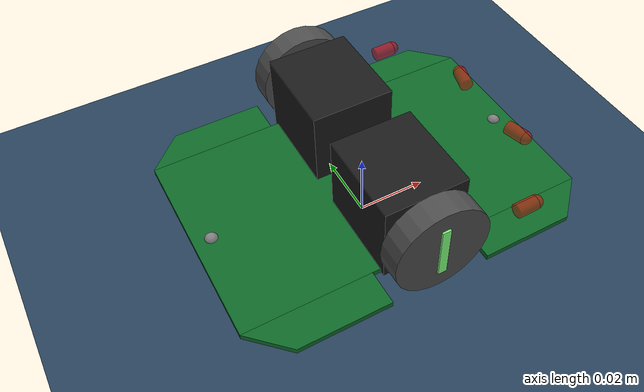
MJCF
<?xml version="1.0" ?>
<mujoco model="micromouse_maze">
  <compiler angle="degree" coordinate="local" inertiafromgeom="true"/>
  <option timestep="0.001" gravity="0 0 -9.81"/>
  <visual>
    <global offwidth="1024" offheight="1024"/>
  </visual>
  <asset>
    <texture name="tex_floor" type="2d" builtin="checker" rgb1=".2 .3 .4" rgb2=".1 .2 .3" width="512" height="512"/>
    <material name="mat_floor" texture="tex_floor" texrepeat="1111 1111" reflectance="0.3"/>
    <material name="mat_wall_white" rgba="1 1 1 1"/>
    <material name="mat_wall_red" rgba="1 0 0 1"/>
    <material name="mat_post" rgba="1 1 1 1"/>
    <material name="mat_pcb" rgba="0.1 0.1 0.1 1" specular="0.5" shininess="0.5"/>
    <material name="mat_tire" rgba="0.1 0.1 0.1 1" reflectance="0.1"/>
    <material name="mat_wheel" rgba="0.9 0.9 0.9 1"/>
    <material name="mat_motor" rgba="0.6 0.6 0.6 1" specular="1" shininess="1"/>
    <material name="mat_battery" rgba="0.1 0.1 0.8 1"/>
    <material name="mat_sensor_body" rgba="0.2 0.2 0.2 1"/>
    <material name="mat_led" rgba="0.9 0.9 0.9 0.5"/>
    <mesh name="coner" vertex="0 0 -0.0008  0.036 0 -0.0008  0.026 0.01 -0.0008  0 0.01 -0.0008  0 0 0.0008  0.036 0 0.0008  0.026 0.01 0.0008  0 0.01 0.0008"/>
  </asset>
  <worldbody>
    <geom name="floor" pos="0 0 0" size="100 100 0.1" type="plane" material="mat_floor"/>
    <light diffuse=".5 .5 .5" pos="0 0 4" dir="0 0 -1"/>
    <body name="mouse" pos="0 0 0.012">
      <freejoint name="root"/>
      <camera name="track" mode="fixed" pos="-0.4 0 0.5" xyaxes="0 -1 0 0.74 0 0.67" fovy="60"/>
      <geom name="mein_body1" type="box" size="0.05 0.03 0.0008" rgba="0.05 0.4 0.15 1" pos="0 0 0.002" mass="4.65e-3"/>
      <geom name="mein_body2" type="mesh" mesh="coner" friction="0.0 0.0 0.0" rgba="0.05 0.4 0.15 1" pos="0.014 0.03 0.002" mass="4.65e-3"/>
      <geom name="mein_body3" type="mesh" mesh="coner" friction="0.0 0.0 0.0" rgba="0.05 0.4 0.15 1" pos="0.014 -0.03 0.002" euler="180 0 0" mass="4.65e-3"/>
      <geom name="mein_body4" type="mesh" mesh="coner" friction="0.0 0.0 0.0" rgba="0.05 0.4 0.15 1" pos="-0.014 0.03 0.002" euler="0 180 0" mass="4.65e-3"/>
      <geom name="mein_body5" type="mesh" mesh="coner" friction="0.0 0.0 0.0" rgba="0.05 0.4 0.15 1" pos="-0.014 -0.03 0.002" euler="180 180 0" mass="4.65e-3"/>
      <geom name="caster_front" type="sphere" size="0.002" pos="0.045 0 0.002" rgba="0.5 0.5 0.5 1" friction="0 0 0" mass="0.001"/>
      <geom name="caster_back" type="sphere" size="0.002" pos="-0.045 0 0.002" rgba="0.5 0.5 0.5 1" friction="0 0 0" mass="0.001"/>
      <body name="motorbox1" pos="0 -0.018 0.0135">
        <geom type="box" size="0.0117 0.0135 0.0117" rgba="0.1 0.1 0.1 1" mass="0.05"/>
      </body>
      <body name="motorbox2" pos="0 0.018 0.0135">
        <geom type="box" size="0.0117 0.0135 0.0117" rgba="0.1 0.1 0.1 1" mass="0.05"/>
      </body>
      <body name="left_wheel" pos="0 0.036 0.0135" zaxis="0 1 0">
        <joint name="left_wheel_joint" type="hinge" axis="0 0 1" damping="0.000054"/>
        <geom type="cylinder" size="0.0135 0.0035" rgba="0.3 0.3 0.3 1" friction="1.0 0 0" mass="0.05"/>
        <site type="box" size="0.0012 0.008 0.004" rgba="0.5 1 0.5 1"/>
      </body>
      <body name="right_wheel" pos="0 -0.036 0.0135" zaxis="0 1 0">
        <joint name="right_wheel_joint" type="hinge" axis="0 0 1" damping="0.000054"/>
        <geom type="cylinder" size="0.0135 0.0035" rgba="0.3 0.3 0.3 1" friction="1.0 0 0" mass="0.05"/>
        <site type="box" size="0.0012 0.008 0.004" rgba="0.5 1 0.5 1"/>
      </body>
      <body name="visual_sensor_left_front" pos="0.031 0.036 0.01" zaxis="1 0 0.026">
        <geom type="cylinder" size="0.002 0.003" pos="0 0 -0.003" rgba="1 0 0 0.5" mass="0.001"/>
        <geom type="sphere" size="0.002" pos="0 0 0" rgba="1 0 0 0.5" mass="0.001"/>
        <site name="sensor_left_front" type="box" size="0.001 0.001 0.001" pos="0 0 0.002" rgba="0 0 0 0"/>
      </body>
      <body name="visual_sensor_left_side" pos="0.043 0.016 0.01" zaxis="0.25 1 0.026">
        <geom type="cylinder" size="0.002 0.003" pos="0 0 -0.003" rgba="1 0 0 0.5" mass="0.001"/>
        <geom type="sphere" size="0.002" pos="0 0 0" rgba="1 0 0 0.5" mass="0.001"/>
        <site name="sensor_left_side" type="box" size="0.001 0.001 0.001" pos="0 0 0.002" rgba="0 0 0 0"/>
      </body>
      <body name="visual_sensor_right_front" pos="0.031 -0.036 0.01" zaxis="1 0 0.026">
        <geom type="cylinder" size="0.002 0.003" pos="0 0 -0.003" rgba="1 0 0 0.5" mass="0.001"/>
        <geom type="sphere" size="0.002" pos="0 0 0" rgba="1 0 0 0.5" mass="0.001"/>
        <site name="sensor_right_front" type="box" size="0.001 0.001 0.001" pos="0 0 0.002" rgba="0 0 0 0"/>
      </body>
      <body name="visual_sensor_right_side" pos="0.043 -0.016 0.01" zaxis="0.25 -1 0.026">
        <geom type="cylinder" size="0.002 0.003" pos="0 0 -0.003" rgba="1 0 0 0.5" mass="0.001"/>
        <geom type="sphere" size="0.002" pos="0 0 0" rgba="1 0 0 0.5" mass="0.001"/>
        <site name="sensor_right_side" type="box" size="0.001 0.001 0.001" pos="0 0 0.002" rgba="0 0 0 0"/>
      </body>
      <site name="accerometer" type="box" size="0.001 0.001 0.001" pos="0 0 0.0033"/>
      <site name="gyro" type="box" size="0.001 0.001 0.001" pos="0 0 0.0033"/>
    </body>
  </worldbody>
  <actuator>
    <motor name="act_left" joint="left_wheel_joint" gear="0.0072" ctrllimited="true" ctrlrange="-3 3"/>
    <motor name="act_right" joint="right_wheel_joint" gear="0.0072" ctrllimited="true" ctrlrange="-3 3"/>
  </actuator>
  <sensor>
    <rangefinder name="LF" site="sensor_left_front" cutoff="0.15"/>
    <rangefinder name="LS" site="sensor_left_side" cutoff="0.15"/>
    <rangefinder name="RF" site="sensor_right_front" cutoff="0.15"/>
    <rangefinder name="RS" site="sensor_right_side" cutoff="0.15"/>
    <accelerometer name="Accel" site="accerometer"/>
    <gyro name="Gyro" site="gyro"/>
  </sensor>
  <contact>
    <exclude body1="mouse" body2="left_wheel"/>
    <exclude body1="mouse" body2="right_wheel"/>
  </contact>
</mujoco>
